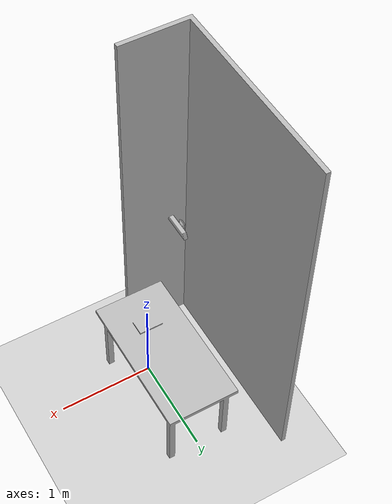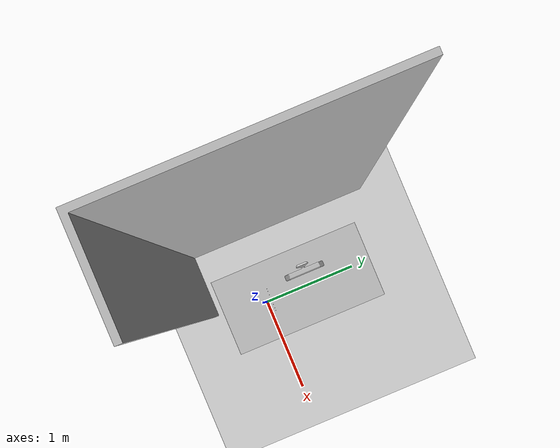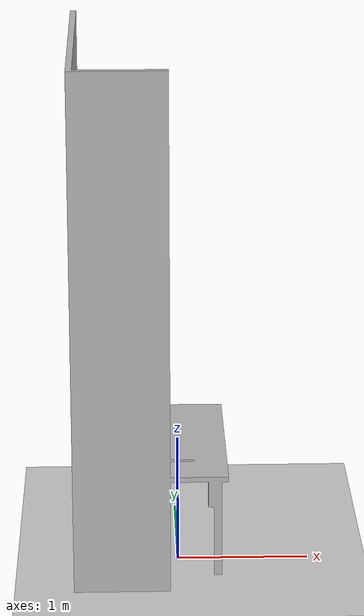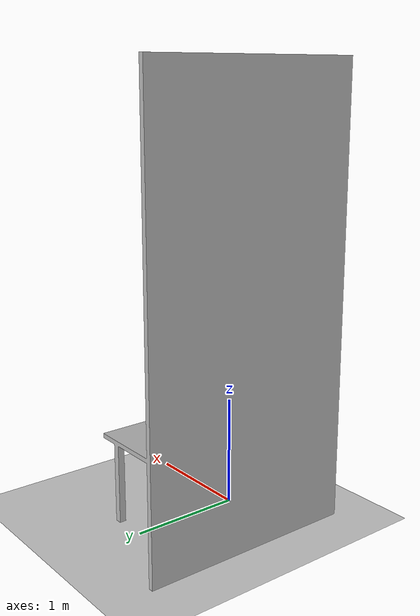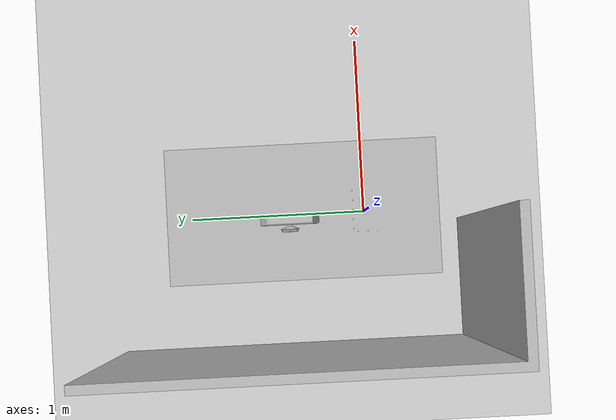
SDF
<?xml version="1.0" ?>
<sdf version="1.5">
    <world name="default">
        <!-- Floor -->
        <light name='sun' type='directional'>
            <cast_shadows>1</cast_shadows>
            <pose frame=''>0 0 10 0 -0 0</pose>
            <diffuse>0.8 0.8 0.8 1</diffuse>
            <specular>0.1 0.1 0.1 1</specular>
            <attenuation>
                <range>1000</range>
                <constant>0.9</constant>
                <linear>0.01</linear>
                <quadratic>0.001</quadratic>
            </attenuation>
            <direction>-0.5 0.5 -1</direction>
        </light>
        <include>
            <uri>model://arq_ur5_setup</uri>
            <static>true</static>
            <name>arq_ur5_setup</name>
            <pose>0.0 0.0 0.0 0 0 0</pose>
        </include>
        <include>
            <uri>model://ground</uri>
            <static>true</static>
            <name>ground</name>
            <pose>0.0 0.0 0.0 0 0 0</pose>
        </include>
        <!-- kinect -->
        <include>
            <uri>model://kinect_ros</uri>
            <static>true</static>
            <name>kinect_ros</name>
            <pose>-0.08 0.430 2.73 0 1.57079632679 0</pose>
        </include>
        <physics type="ode">
            <gravity>0.000000 0.000000 -9.810000</gravity>
            <ode>
                <solver>
                    <type>quick</type>
                    <iters>100</iters>
                    <precon_iters>0</precon_iters>
                    <sor>1.000000</sor>
                </solver>
                <constraints>
                    <cfm>0.000000</cfm>
                    <erp>0.500000</erp>
                    <contact_max_correcting_vel>1000.000000</contact_max_correcting_vel>
                    <contact_surface_layer>0.00000</contact_surface_layer>
                </constraints>
            </ode>
            <real_time_update_rate>0.000000</real_time_update_rate>
            <max_step_size>0.001000</max_step_size>
        </physics>
        <scene>
            <ambient>0.4 0.4 0.4 1</ambient>
            <background>0.7 0.7 1 1</background>
            <shadows>1</shadows>
        </scene>
        <gui fullscreen='0'>
            <camera name='user_camera'>
                <pose frame=''>2.8784 4.2586 1.43117 0 0.083643 -2.30699</pose>
                <view_controller>orbit</view_controller>
            </camera>
        </gui>
    </world>
</sdf>

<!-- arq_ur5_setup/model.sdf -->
<sdf version="1.5">
    <model name="arq_ur5_setup">
        <static>true</static>
        <link name="link">
            <inertial>
                <mass>20</mass>
            </inertial>
            <collision name="collision">
                <pose>0.0 0.0 0.0 0 0.0 0.0</pose>
                <geometry>
                    <mesh>
                        <uri>model://arq_ur5_setup/meshes/arq_ur5_setup.stl</uri>
                    </mesh>
                </geometry>
            </collision>
            <visual name="visual">
                <pose>0.0 0.0 0.0 0 0.0 0.0</pose>
                <geometry>
                    <mesh>
                        <uri>model://arq_ur5_setup/meshes/arq_ur5_setup.stl</uri>
                    </mesh>
                </geometry>
            </visual>
        </link>
    </model>
</sdf>

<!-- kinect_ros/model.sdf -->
<sdf version="1.5">
    <model name="kinect_ros">
        <static>1</static>
        <pose>0 0 0.036 0 0 0</pose>

        <link name="link">
            <inertial>
                <mass>0.1</mass>
            </inertial>

            <collision name="collision">
                <geometry>
                    <box>
                        <size>0.073000 0.276000 0.072000</size>
                    </box>
                </geometry>
            </collision>

            <visual name="visual">
                <geometry>
                    <mesh>
                        <uri>model://kinect/meshes/kinect.dae</uri>
                    </mesh>
                </geometry>
            </visual>

            <sensor name="camera" type="depth">
                <update_rate>30</update_rate>
                <camera>
                    <horizontal_fov>1.047198</horizontal_fov>
                    <image>
                        <width>640</width>
                        <height>480</height>
                        <format>R8G8B8</format>
                    </image>
                    <clip>
                        <near>0.05</near>
                        <far>3</far>
                    </clip>
                </camera>

                <plugin name="camera_plugin" filename="libgazebo_ros_openni_kinect.so">
                    <baseline>0.1</baseline>
                    <alwaysOn>true</alwaysOn>
                    <updateRate>0.0</updateRate>
                    <cameraName>simulated_kinect2</cameraName>
                    <imageTopicName>/simulated_kinect2/rgb_image</imageTopicName>
                    <cameraInfoTopicName>/simulated_kinect2/rgb_info_camera</cameraInfoTopicName>
                    <depthImageTopicName>/simulated_kinect2/depth_image</depthImageTopicName>
                    <depthImageInfoTopicName>/simulated_kinect2/depth_camera_info</depthImageInfoTopicName>
                    <pointCloudTopicName>/simulated_kinect2/pointcloud</pointCloudTopicName>
                    <frameName>simulated_kinect2</frameName>
                    <pointCloudCutoff>0.05</pointCloudCutoff>
                    <distortionK1>0</distortionK1>
                    <distortionK2>0</distortionK2>
                    <distortionK3>0</distortionK3>
                    <distortionT1>0</distortionT1>
                    <distortionT2>0</distortionT2>
                    <CxPrime>0</CxPrime>
                    <Cx>0</Cx>
                    <Cy>0</Cy>
                    <focalLength>0</focalLength>
                    <hackBaseline>0</hackBaseline>
                </plugin>
            </sensor>
        </link>
    </model>
</sdf>
